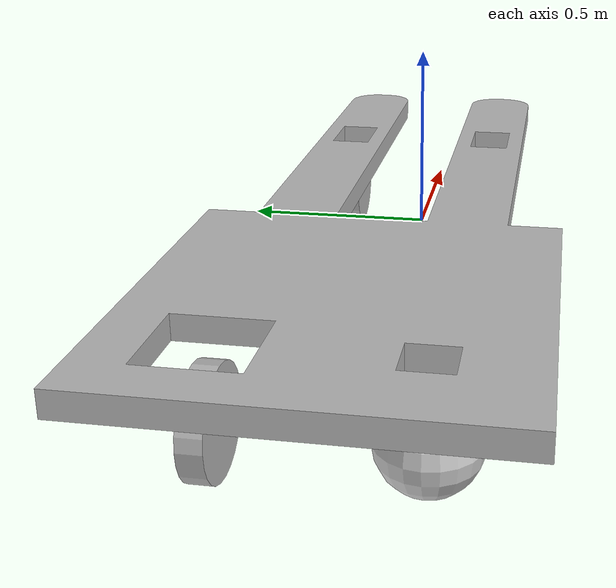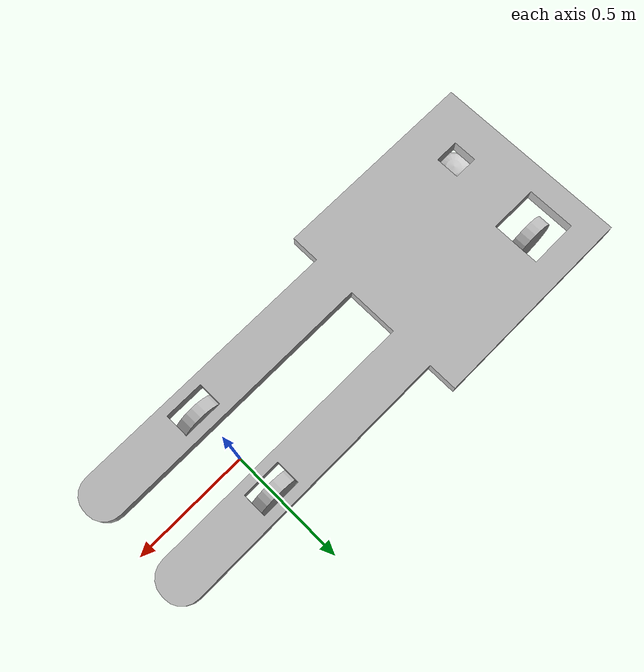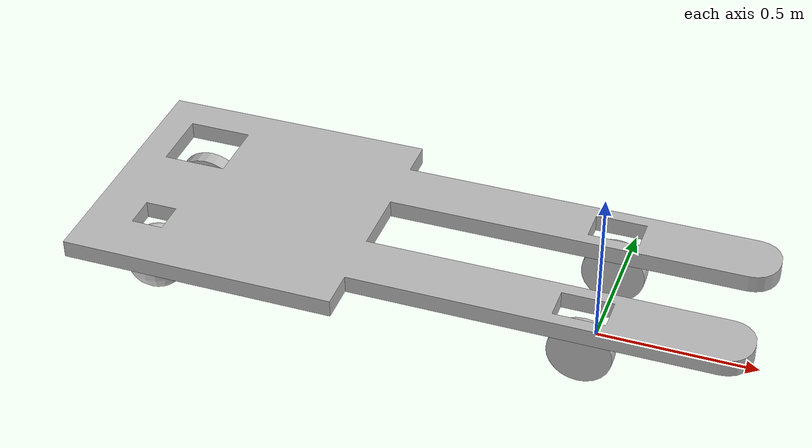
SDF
<?xml version="1.0" ?>
<sdf version="1.6">
  <model name="forklift">
    <static>false</static>

    <!-- Main robot body: rename 'chassis' to 'base_link' -->
    <link name="base_link">
      <!-- Raised above the ground -->
      <pose>0 0.0 0.4 0 0 0</pose>
      <inertial>
        <mass>10</mass>
        <pose>0 0 0 0 0 0</pose>
        <inertia>
          <ixx>1.6</ixx>  <iyy>3.4</iyy>  <izz>4.2</izz>
          <ixy>0</ixy>    <ixz>0</ixz>    <iyz>0</iyz>
        </inertia>
      </inertial>

      <collision name="body_collision">
        <!-- SAME offset and rotation you used for the visual -->
        <pose>0 0.195 -0.2 0 0 3.14159</pose>

        <geometry>
          <mesh>
            <!-- use package:// or model:// once the mesh is installed; file:// is fine for testing -->
            <!-- kina_body_1_0_simple.stl kina_body_1_1.stl -->
            <uri>file:///home/fork/fork_ws/src/harmonic_sim/meshes/kina_body_1_0_simple.stl</uri>
            <scale>0.001 0.001 0.001</scale>
          </mesh>
        </geometry>
      </collision>

        <!-- NEW forklift body visual -->
    <visual name="body_visual">
      <pose>0 0.195 -0.2 0 0 3.14159</pose>        <!-- offset if STL origin ≠ chassis origin -->
      <geometry>
        <mesh>
          <!-- “model://forklift” resolves to the folder that holds model.config -->
          <uri>file:///home/fork/fork_ws/src/harmonic_sim/meshes/kina_body_1_0_simple.stl</uri>
          <scale>0.001 0.001 0.001</scale>
        </mesh>

      </geometry>
      </visual>

      <!-- Lidar sensor is part of base_link, but publishes data in 'lidar_link' frame -->
      <sensor name="lidar_sensor" type="ray">
        <pose>0 0 0.2 0 0 3.14159</pose>
        <update_rate>10</update_rate>
        <visualize>false</visualize> <!-- true -->
        <always_on>true</always_on>
        <ray>
          <scan>
            <horizontal>
              <samples>360</samples>
              <resolution>1</resolution>
              <min_angle>-3.14159</min_angle>
              <max_angle>3.14159</max_angle>
            </horizontal>
          </scan>
          <range>
            <min>0.3</min>
            <max>20</max>
            <resolution>0.01</resolution>
          </range>
        </ray>
        <plugin name="lidar_plugin" filename="libgazebo_ros_ray_sensor.so">
          <ros>
            <use_sim_time>true</use_sim_time>
            <remapping>~/out:=scan</remapping>
          </ros>
          <output_type>sensor_msgs/LaserScan</output_type>
          <frame_name>lidar_link</frame_name>
        </plugin>
      </sensor>

    </link>

    <!-- Front Left Support Wheel -->
    <link name="front_left_wheel">
      <pose>0 0.195 0.1 1.5708 0 0</pose>
      <collision name="collision">
        <geometry>
          <cylinder>
            <radius>0.1</radius>
            <length>0.05</length>
          </cylinder>
        </geometry>
        <surface>
          <friction>
            <ode>
              <!-- Static & dynamic friction coefficients 3.0 is high (rubber-on-concrete -->
              <mu>3.0</mu>
              <mu2>3.0</mu2>
              <!-- Aligns the friction pyramid with the wheel’s rolling direction, preventing sideways “ice-skating -->
              <fdir1>0 0 0</fdir1>
              <!-- Zero removes the built-in slip compliance so the tyre keeps static friction -->
              <slip1>0.0</slip1>
              <slip2>0.0</slip2>
            </ode>
          </friction>

        </surface>
      </collision>
      <visual name="visual">
        <geometry>
          <cylinder>
            <radius>0.1</radius>
            <length>0.05</length>
          </cylinder>
        </geometry>
      </visual>
    </link>

    <!-- Front Right Support Wheel -->
    <link name="front_right_wheel">
      <pose>0 -0.195 0.1 1.5708 0 0</pose>
      <collision name="collision">
        <geometry>
          <cylinder>
            <radius>0.1</radius>
            <length>0.05</length>
          </cylinder>
        </geometry>
        <surface>
          <friction>
            <ode>
              <!-- Static & dynamic friction coefficients 3.0 is high (rubber-on-concrete -->
              <mu>3.0</mu>
              <mu2>3.0</mu2>
              <!-- Aligns the friction pyramid with the wheel’s rolling direction, preventing sideways “ice-skating -->
              <fdir1>0 1 0</fdir1>
              <!-- Zero removes the built-in slip compliance so the tyre keeps static friction -->
              <slip1>0.0</slip1>
              <slip2>0.0</slip2>
            </ode>
          </friction>

        </surface>
      </collision>
      <visual name="visual">
        <geometry>
          <cylinder>
            <radius>0.1</radius>
            <length>0.05</length>
          </cylinder>
        </geometry>
      </visual>
    </link>

    <!-- Passive support ball (right of the drive wheel) -->
    <link name="support_ball">
      <!-- Same x, slightly +y, and lower z than the drive wheel -->
      <pose>-1.36 -0.195 0.1 0 0 0</pose>

      <!-- A 0.16 m diameter steel ball -->
      <collision name="collision">
        <geometry>
          <sphere><radius>0.10</radius></sphere>
        </geometry>
        <surface>
          <!-- Low friction so it slides/rolls easily -->
          <friction>
            <ode>
              <!-- Static & dynamic friction coefficients 3.0 is high (rubber-on-concrete -->
              <mu>3.0</mu>
              <mu2>3.0</mu2>
              <!-- Aligns the friction pyramid with the wheel’s rolling direction, preventing sideways “ice-skating -->
              <fdir1>0 1 0</fdir1>
              <!-- Zero removes the built-in slip compliance so the tyre keeps static friction -->
              <slip1>0.0</slip1>
              <slip2>0.0</slip2>
            </ode>
          </friction>

        </surface>
      </collision>

      <visual name="visual">
        <geometry>
          <sphere><radius>0.10</radius></sphere>
        </geometry>
        <material>
          <ambient>0.8 0.8 0.8 1</ambient>
          <diffuse>0.8 0.8 0.8 1</diffuse>
          <specular>0.2 0.2 0.2 1</specular>  <!-- subtle highlight -->
          <emissive>0 0 0 1</emissive>
        </material>
      </visual>
    </link>

    <!-- Steering Link: intermediary link for drive wheel steering -->
    <link name="steering_link">
      <pose>-1.36 0.195 0.1 1.5708 0 0</pose>
    </link>

    <!-- Rear Drive Wheel -->
    <link name="drive_wheel">
      <pose>-1.36 0.195 0.1 1.5708 0 0</pose>
      <collision name="collision">
        <geometry>
          <cylinder>
            <radius>0.11</radius>
            <length>0.05</length>
          </cylinder>
        </geometry>
        <surface>
          <friction>
            <ode>
              <!-- Static & dynamic friction coefficients 3.0 is high (rubber-on-concrete -->
              <mu>4.0</mu>
              <mu2>4.0</mu2>
              <!-- Aligns the friction pyramid with the wheel’s rolling direction, preventing sideways “ice-skating -->
              <fdir1>0 1 0</fdir1>
              <!-- Zero removes the built-in slip compliance so the tyre keeps static friction -->
              <slip1>0.0</slip1>
              <slip2>0.0</slip2>
            </ode>
          </friction>

        </surface>
      </collision>
      <visual name="visual">
        <geometry>
          <cylinder>
            <radius>0.11</radius>
            <length>0.05</length>
          </cylinder>
        </geometry>
      </visual>
    </link>

    <!-- Joints: replace 'chassis' with 'base_link' as parent -->
    <joint name="front_left_joint" type="revolute">
      <parent>base_link</parent>
      <child>front_left_wheel</child>
      <pose>0.0 -0.0 0.0 1.5708 0 0</pose>
      <axis>
        <xyz>0 1 0</xyz>
      </axis>
    </joint>

    <joint name="front_right_joint" type="revolute">
      <parent>base_link</parent>
      <child>front_right_wheel</child>
      <pose>0.0 0.0 0.0 1.5708 0 0</pose>
      <axis>
        <xyz>0 1 0</xyz>
      </axis>
    </joint>

    <joint name="support_ball_joint" type="revolute">
      <parent>base_link</parent>
      <child>support_ball</child>
      <pose>0 0.0 0.0 0 0 0</pose>
    </joint>

    <!-- Left wheel joint for differential drive -->
    <joint name="left_wheel_joint" type="revolute">
      <parent>base_link</parent>
      <child>front_left_wheel</child>
      <axis>
        <xyz>0 1 0</xyz>
        <dynamics>
          <damping>0.2</damping>
          <friction>0.1</friction>
        </dynamics>
      </axis>
    </joint>

    <!-- Right wheel joint for differential drive -->
    <joint name="right_wheel_joint" type="revolute">
      <parent>base_link</parent>
      <child>front_right_wheel</child>
      <axis>
        <xyz>0 1 0</xyz>
        <dynamics>
          <damping>0.2</damping>
          <friction>0.1</friction>
        </dynamics>
      </axis>
    </joint>

    <joint name="steering_joint" type="revolute">
      <parent>base_link</parent>
      <child>steering_link</child>
      <pose>-0.0 0 0.0 1.5708 0 3.14159</pose>
      <axis>
        <xyz>0 0 1</xyz>
        <limit>
          <lower>-1000</lower>
          <upper>1000</upper>
        </limit>
        <dynamics>
          <damping>5.5</damping>
          <friction>0.1</friction>
        </dynamics>
      </axis>
    </joint>

    <joint name="drive_joint" type="revolute">
      <parent>steering_link</parent>
      <child>drive_wheel</child>
      <pose>-0.0 0 0.0 1.5708 0 0</pose>
      <axis>
        <xyz>0 1 0</xyz>
        <limit>
          <lower>-1000</lower>
          <upper>1000</upper>
        </limit>
        <dynamics>
          <damping>8.5</damping>
          <friction>0.1</friction>
        </dynamics>
      </axis>
    </joint>

    <!-- Differential drive plugin for ROS2 navigation -->
    <plugin name="differential_drive_controller" filename="libgazebo_ros_diff_drive.so">
      <ros>
        <namespace>/</namespace>
        <remapping>cmd_vel:=cmd_vel</remapping>
        <remapping>odom:=odom</remapping>
      </ros>

      <!-- Wheel Information -->
      <left_joint>left_wheel_joint</left_joint>
      <right_joint>right_wheel_joint</right_joint>

      <!-- Kinematics -->
      <wheel_separation>0.39</wheel_separation>
      <wheel_diameter>0.2</wheel_diameter>

      <!-- Limits -->
      <max_wheel_torque>20</max_wheel_torque>
      <max_wheel_acceleration>1.0</max_wheel_acceleration>

      <!-- Output -->
      <publish_odom>true</publish_odom>
      <publish_odom_tf>true</publish_odom_tf>
      <publish_wheel_tf>true</publish_wheel_tf>

      <odometry_frame>odom</odometry_frame>
      <robot_base_frame>base_link</robot_base_frame>
    </plugin>

  </model>
</sdf>
